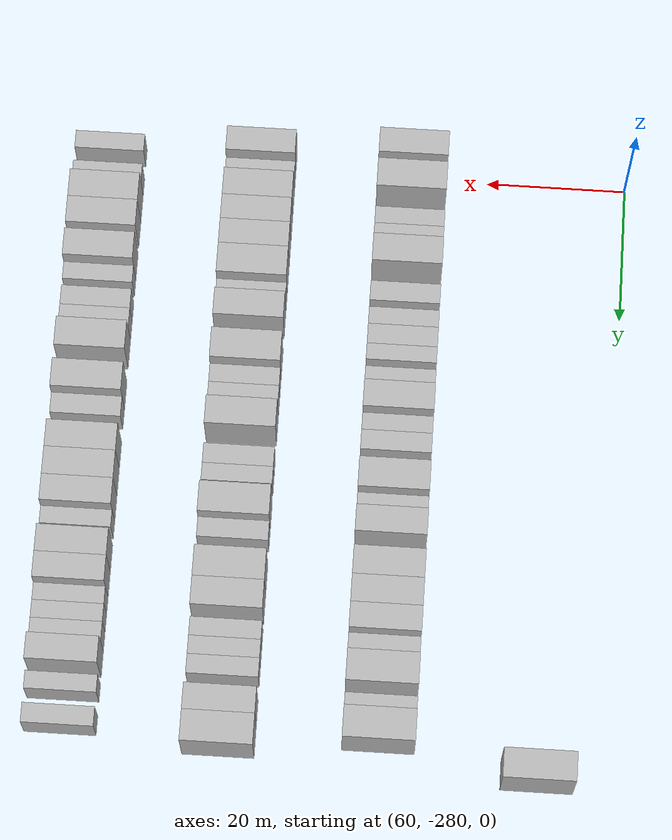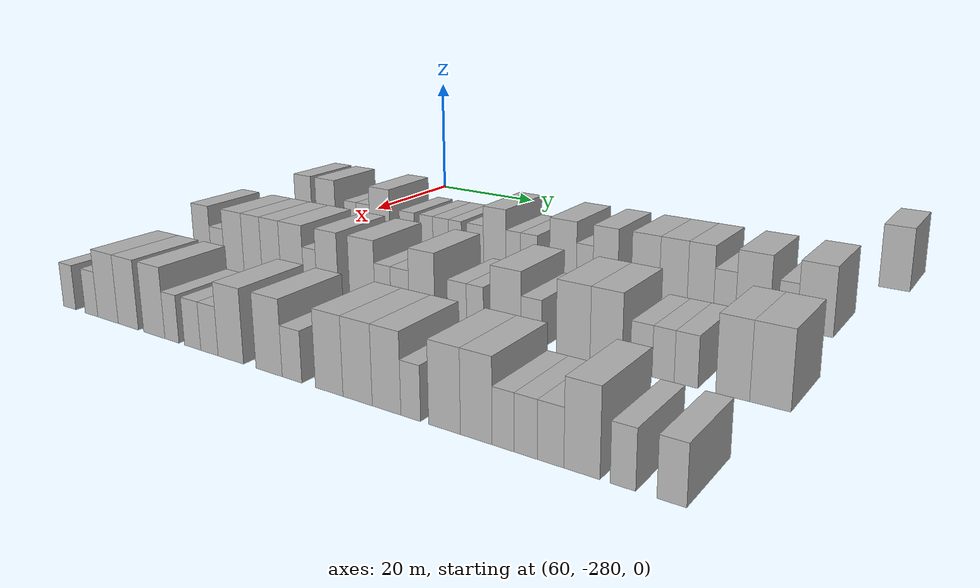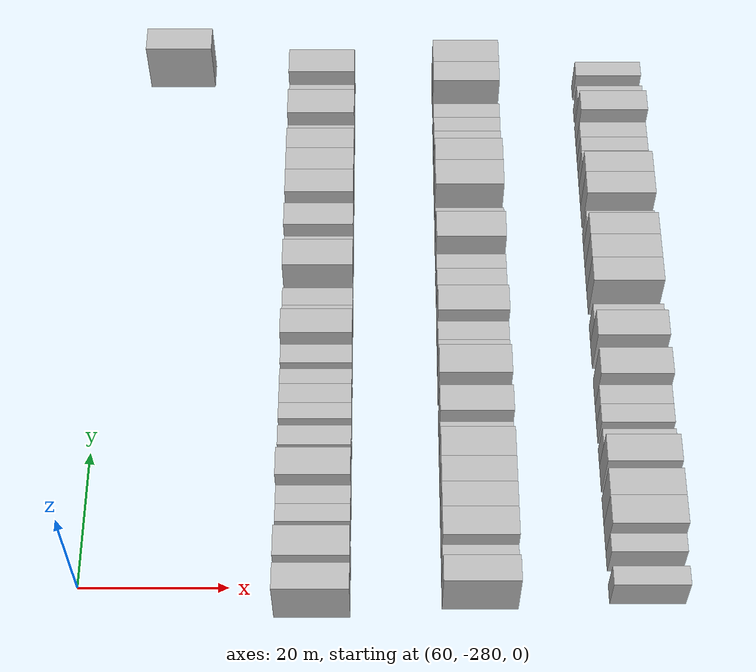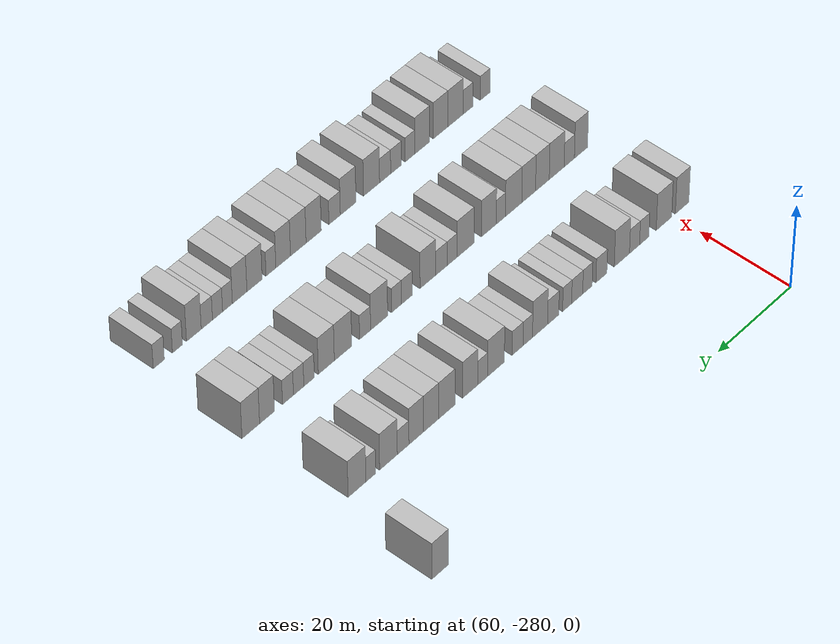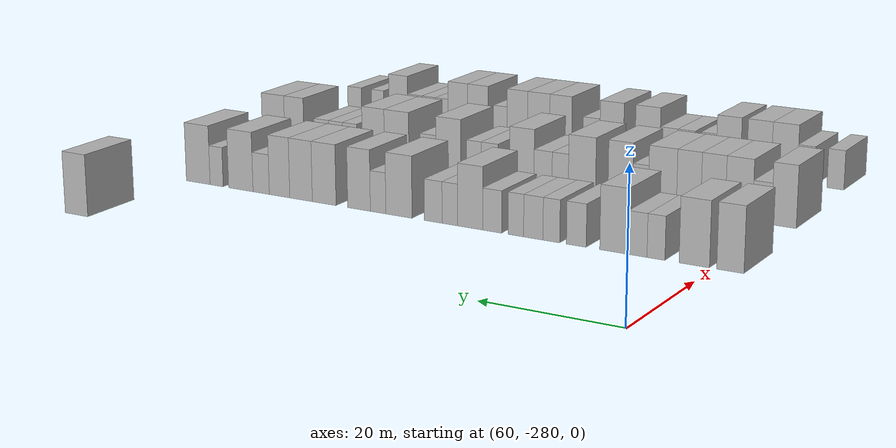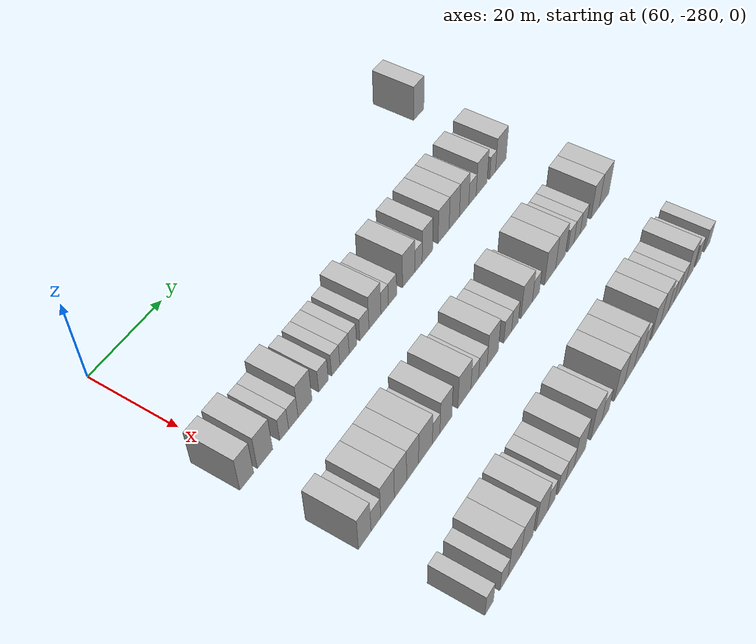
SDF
<sdf version="1.6">
 <world name="default">
  <model name="building_425">
   <static>1</static>
   <pose>69.0000 -192.4754 0 0.000000 0.000000 0.000000</pose>
   <link name="link">
    <pose>0 0 4.50 0 0 0</pose>
    <collision name="collision"><geometry><box><size>10.0000 4.1324 9.0000</size></box></geometry></collision>
    <visual name="visual">
     <cast_shadows>0</cast_shadows>
     <geometry><box><size>10.0000 4.1324 9.0000</size></box></geometry>
     <material>
      <script>
       <uri>model://HANNAS_wall/materials/scripts</uri>
       <uri>model://HANNAS_wall/materials/textures</uri>
       <name>vrc/HANNAS_wall</name>
      </script>
     </material>
    </visual>
   </link>
  </model>
  <model name="building_601">
   <static>1</static>
   <pose>91.0000 -282.3535 0 0.000000 0.000000 0.000000</pose>
   <link name="link">
    <pose>0 0 4.50 0 0 0</pose>
    <collision name="collision"><geometry><box><size>10.0000 3.7464 9.0000</size></box></geometry></collision>
    <visual name="visual">
     <cast_shadows>0</cast_shadows>
     <geometry><box><size>10.0000 3.7464 9.0000</size></box></geometry>
     <material>
      <script>
       <uri>model://HANNAS_wall/materials/scripts</uri>
       <uri>model://HANNAS_wall/materials/textures</uri>
       <name>vrc/HANNAS_wall</name>
      </script>
     </material>
    </visual>
   </link>
  </model>
  <model name="building_602">
   <static>1</static>
   <pose>91.0000 -277.3489 0 0.000000 0.000000 0.000000</pose>
   <link name="link">
    <pose>0 0 4.50 0 0 0</pose>
    <collision name="collision"><geometry><box><size>10.0000 4.2627 9.0000</size></box></geometry></collision>
    <visual name="visual">
     <cast_shadows>0</cast_shadows>
     <geometry><box><size>10.0000 4.2627 9.0000</size></box></geometry>
     <material>
      <script>
       <uri>model://HANNAS_wall/materials/scripts</uri>
       <uri>model://HANNAS_wall/materials/textures</uri>
       <name>vrc/HANNAS_wall</name>
      </script>
     </material>
    </visual>
   </link>
  </model>
  <model name="building_603">
   <static>1</static>
   <pose>91.0000 -271.9342 0 0.000000 0.000000 0.000000</pose>
   <link name="link">
    <pose>0 0 3.00 0 0 0</pose>
    <collision name="collision"><geometry><box><size>10.0000 2.5668 6.0000</size></box></geometry></collision>
    <visual name="visual">
     <cast_shadows>0</cast_shadows>
     <geometry><box><size>10.0000 2.5668 6.0000</size></box></geometry>
     <material>
      <script>
       <uri>model://HANNAS_wall/materials/scripts</uri>
       <uri>model://HANNAS_wall/materials/textures</uri>
       <name>vrc/HANNAS_wall</name>
      </script>
     </material>
    </visual>
   </link>
  </model>
  <model name="building_604">
   <static>1</static>
   <pose>91.0000 -269.2758 0 0.000000 0.000000 0.000000</pose>
   <link name="link">
    <pose>0 0 3.00 0 0 0</pose>
    <collision name="collision"><geometry><box><size>10.0000 2.7500 6.0000</size></box></geometry></collision>
    <visual name="visual">
     <cast_shadows>0</cast_shadows>
     <geometry><box><size>10.0000 2.7500 6.0000</size></box></geometry>
     <material>
      <script>
       <uri>model://HANNAS_wall/materials/scripts</uri>
       <uri>model://HANNAS_wall/materials/textures</uri>
       <name>vrc/HANNAS_wall</name>
      </script>
     </material>
    </visual>
   </link>
  </model>
  <model name="building_605">
   <static>1</static>
   <pose>91.0000 -265.8341 0 0.000000 0.000000 0.000000</pose>
   <link name="link">
    <pose>0 0 4.50 0 0 0</pose>
    <collision name="collision"><geometry><box><size>10.0000 4.1334 9.0000</size></box></geometry></collision>
    <visual name="visual">
     <cast_shadows>0</cast_shadows>
     <geometry><box><size>10.0000 4.1334 9.0000</size></box></geometry>
     <material>
      <script>
       <uri>model://HANNAS_wall/materials/scripts</uri>
       <uri>model://HANNAS_wall/materials/textures</uri>
       <name>vrc/HANNAS_wall</name>
      </script>
     </material>
    </visual>
   </link>
  </model>
  <model name="building_606">
   <static>1</static>
   <pose>91.0000 -260.2867 0 0.000000 0.000000 0.000000</pose>
   <link name="link">
    <pose>0 0 3.00 0 0 0</pose>
    <collision name="collision"><geometry><box><size>10.0000 2.9616 6.0000</size></box></geometry></collision>
    <visual name="visual">
     <cast_shadows>0</cast_shadows>
     <geometry><box><size>10.0000 2.9616 6.0000</size></box></geometry>
     <material>
      <script>
       <uri>model://HANNAS_wall/materials/scripts</uri>
       <uri>model://HANNAS_wall/materials/textures</uri>
       <name>vrc/HANNAS_wall</name>
      </script>
     </material>
    </visual>
   </link>
  </model>
  <model name="building_607">
   <static>1</static>
   <pose>91.0000 -256.5291 0 0.000000 0.000000 0.000000</pose>
   <link name="link">
    <pose>0 0 3.00 0 0 0</pose>
    <collision name="collision"><geometry><box><size>10.0000 2.5535 6.0000</size></box></geometry></collision>
    <visual name="visual">
     <cast_shadows>0</cast_shadows>
     <geometry><box><size>10.0000 2.5535 6.0000</size></box></geometry>
     <material>
      <script>
       <uri>model://HANNAS_wall/materials/scripts</uri>
       <uri>model://HANNAS_wall/materials/textures</uri>
       <name>vrc/HANNAS_wall</name>
      </script>
     </material>
    </visual>
   </link>
  </model>
  <model name="building_608">
   <static>1</static>
   <pose>91.0000 -253.7678 0 0.000000 0.000000 0.000000</pose>
   <link name="link">
    <pose>0 0 3.00 0 0 0</pose>
    <collision name="collision"><geometry><box><size>10.0000 2.9691 6.0000</size></box></geometry></collision>
    <visual name="visual">
     <cast_shadows>0</cast_shadows>
     <geometry><box><size>10.0000 2.9691 6.0000</size></box></geometry>
     <material>
      <script>
       <uri>model://HANNAS_wall/materials/scripts</uri>
       <uri>model://HANNAS_wall/materials/textures</uri>
       <name>vrc/HANNAS_wall</name>
      </script>
     </material>
    </visual>
   </link>
  </model>
  <model name="building_609">
   <static>1</static>
   <pose>91.0000 -251.0777 0 0.000000 0.000000 0.000000</pose>
   <link name="link">
    <pose>0 0 3.00 0 0 0</pose>
    <collision name="collision"><geometry><box><size>10.0000 2.4110 6.0000</size></box></geometry></collision>
    <visual name="visual">
     <cast_shadows>0</cast_shadows>
     <geometry><box><size>10.0000 2.4110 6.0000</size></box></geometry>
     <material>
      <script>
       <uri>model://HANNAS_wall/materials/scripts</uri>
       <uri>model://HANNAS_wall/materials/textures</uri>
       <name>vrc/HANNAS_wall</name>
      </script>
     </material>
    </visual>
   </link>
  </model>
  <model name="building_610">
   <static>1</static>
   <pose>91.0000 -247.3742 0 0.000000 0.000000 0.000000</pose>
   <link name="link">
    <pose>0 0 3.00 0 0 0</pose>
    <collision name="collision"><geometry><box><size>10.0000 2.9961 6.0000</size></box></geometry></collision>
    <visual name="visual">
     <cast_shadows>0</cast_shadows>
     <geometry><box><size>10.0000 2.9961 6.0000</size></box></geometry>
     <material>
      <script>
       <uri>model://HANNAS_wall/materials/scripts</uri>
       <uri>model://HANNAS_wall/materials/textures</uri>
       <name>vrc/HANNAS_wall</name>
      </script>
     </material>
    </visual>
   </link>
  </model>
  <model name="building_611">
   <static>1</static>
   <pose>91.0000 -243.8881 0 0.000000 0.000000 0.000000</pose>
   <link name="link">
    <pose>0 0 4.50 0 0 0</pose>
    <collision name="collision"><geometry><box><size>10.0000 3.9760 9.0000</size></box></geometry></collision>
    <visual name="visual">
     <cast_shadows>0</cast_shadows>
     <geometry><box><size>10.0000 3.9760 9.0000</size></box></geometry>
     <material>
      <script>
       <uri>model://HANNAS_wall/materials/scripts</uri>
       <uri>model://HANNAS_wall/materials/textures</uri>
       <name>vrc/HANNAS_wall</name>
      </script>
     </material>
    </visual>
   </link>
  </model>
  <model name="building_612">
   <static>1</static>
   <pose>91.0000 -240.6509 0 0.000000 0.000000 0.000000</pose>
   <link name="link">
    <pose>0 0 3.00 0 0 0</pose>
    <collision name="collision"><geometry><box><size>10.0000 2.4986 6.0000</size></box></geometry></collision>
    <visual name="visual">
     <cast_shadows>0</cast_shadows>
     <geometry><box><size>10.0000 2.4986 6.0000</size></box></geometry>
     <material>
      <script>
       <uri>model://HANNAS_wall/materials/scripts</uri>
       <uri>model://HANNAS_wall/materials/textures</uri>
       <name>vrc/HANNAS_wall</name>
      </script>
     </material>
    </visual>
   </link>
  </model>
  <model name="building_613">
   <static>1</static>
   <pose>91.0000 -237.9534 0 0.000000 0.000000 0.000000</pose>
   <link name="link">
    <pose>0 0 3.00 0 0 0</pose>
    <collision name="collision"><geometry><box><size>10.0000 2.8962 6.0000</size></box></geometry></collision>
    <visual name="visual">
     <cast_shadows>0</cast_shadows>
     <geometry><box><size>10.0000 2.8962 6.0000</size></box></geometry>
     <material>
      <script>
       <uri>model://HANNAS_wall/materials/scripts</uri>
       <uri>model://HANNAS_wall/materials/textures</uri>
       <name>vrc/HANNAS_wall</name>
      </script>
     </material>
    </visual>
   </link>
  </model>
  <model name="building_614">
   <static>1</static>
   <pose>91.0000 -232.3264 0 0.000000 0.000000 0.000000</pose>
   <link name="link">
    <pose>0 0 4.50 0 0 0</pose>
    <collision name="collision"><geometry><box><size>10.0000 4.3578 9.0000</size></box></geometry></collision>
    <visual name="visual">
     <cast_shadows>0</cast_shadows>
     <geometry><box><size>10.0000 4.3578 9.0000</size></box></geometry>
     <material>
      <script>
       <uri>model://HANNAS_wall/materials/scripts</uri>
       <uri>model://HANNAS_wall/materials/textures</uri>
       <name>vrc/HANNAS_wall</name>
      </script>
     </material>
    </visual>
   </link>
  </model>
  <model name="building_615">
   <static>1</static>
   <pose>91.0000 -228.8420 0 0.000000 0.000000 0.000000</pose>
   <link name="link">
    <pose>0 0 3.00 0 0 0</pose>
    <collision name="collision"><geometry><box><size>10.0000 2.6111 6.0000</size></box></geometry></collision>
    <visual name="visual">
     <cast_shadows>0</cast_shadows>
     <geometry><box><size>10.0000 2.6111 6.0000</size></box></geometry>
     <material>
      <script>
       <uri>model://HANNAS_wall/materials/scripts</uri>
       <uri>model://HANNAS_wall/materials/textures</uri>
       <name>vrc/HANNAS_wall</name>
      </script>
     </material>
    </visual>
   </link>
  </model>
  <model name="building_616">
   <static>1</static>
   <pose>91.0000 -225.6134 0 0.000000 0.000000 0.000000</pose>
   <link name="link">
    <pose>0 0 4.50 0 0 0</pose>
    <collision name="collision"><geometry><box><size>10.0000 3.8460 9.0000</size></box></geometry></collision>
    <visual name="visual">
     <cast_shadows>0</cast_shadows>
     <geometry><box><size>10.0000 3.8460 9.0000</size></box></geometry>
     <material>
      <script>
       <uri>model://HANNAS_wall/materials/scripts</uri>
       <uri>model://HANNAS_wall/materials/textures</uri>
       <name>vrc/HANNAS_wall</name>
      </script>
     </material>
    </visual>
   </link>
  </model>
  <model name="building_617">
   <static>1</static>
   <pose>91.0000 -219.6248 0 0.000000 0.000000 0.000000</pose>
   <link name="link">
    <pose>0 0 4.50 0 0 0</pose>
    <collision name="collision"><geometry><box><size>10.0000 4.1311 9.0000</size></box></geometry></collision>
    <visual name="visual">
     <cast_shadows>0</cast_shadows>
     <geometry><box><size>10.0000 4.1311 9.0000</size></box></geometry>
     <material>
      <script>
       <uri>model://HANNAS_wall/materials/scripts</uri>
       <uri>model://HANNAS_wall/materials/textures</uri>
       <name>vrc/HANNAS_wall</name>
      </script>
     </material>
    </visual>
   </link>
  </model>
  <model name="building_618">
   <static>1</static>
   <pose>91.0000 -215.5722 0 0.000000 0.000000 0.000000</pose>
   <link name="link">
    <pose>0 0 4.50 0 0 0</pose>
    <collision name="collision"><geometry><box><size>10.0000 3.9739 9.0000</size></box></geometry></collision>
    <visual name="visual">
     <cast_shadows>0</cast_shadows>
     <geometry><box><size>10.0000 3.9739 9.0000</size></box></geometry>
     <material>
      <script>
       <uri>model://HANNAS_wall/materials/scripts</uri>
       <uri>model://HANNAS_wall/materials/textures</uri>
       <name>vrc/HANNAS_wall</name>
      </script>
     </material>
    </visual>
   </link>
  </model>
  <model name="building_619">
   <static>1</static>
   <pose>91.0000 -211.7579 0 0.000000 0.000000 0.000000</pose>
   <link name="link">
    <pose>0 0 4.50 0 0 0</pose>
    <collision name="collision"><geometry><box><size>10.0000 3.6548 9.0000</size></box></geometry></collision>
    <visual name="visual">
     <cast_shadows>0</cast_shadows>
     <geometry><box><size>10.0000 3.6548 9.0000</size></box></geometry>
     <material>
      <script>
       <uri>model://HANNAS_wall/materials/scripts</uri>
       <uri>model://HANNAS_wall/materials/textures</uri>
       <name>vrc/HANNAS_wall</name>
      </script>
     </material>
    </visual>
   </link>
  </model>
  <model name="building_620">
   <static>1</static>
   <pose>91.0000 -208.4548 0 0.000000 0.000000 0.000000</pose>
   <link name="link">
    <pose>0 0 3.00 0 0 0</pose>
    <collision name="collision"><geometry><box><size>10.0000 2.9514 6.0000</size></box></geometry></collision>
    <visual name="visual">
     <cast_shadows>0</cast_shadows>
     <geometry><box><size>10.0000 2.9514 6.0000</size></box></geometry>
     <material>
      <script>
       <uri>model://HANNAS_wall/materials/scripts</uri>
       <uri>model://HANNAS_wall/materials/textures</uri>
       <name>vrc/HANNAS_wall</name>
      </script>
     </material>
    </visual>
   </link>
  </model>
  <model name="building_621">
   <static>1</static>
   <pose>91.0000 -204.7466 0 0.000000 0.000000 0.000000</pose>
   <link name="link">
    <pose>0 0 4.50 0 0 0</pose>
    <collision name="collision"><geometry><box><size>10.0000 4.4648 9.0000</size></box></geometry></collision>
    <visual name="visual">
     <cast_shadows>0</cast_shadows>
     <geometry><box><size>10.0000 4.4648 9.0000</size></box></geometry>
     <material>
      <script>
       <uri>model://HANNAS_wall/materials/scripts</uri>
       <uri>model://HANNAS_wall/materials/textures</uri>
       <name>vrc/HANNAS_wall</name>
      </script>
     </material>
    </visual>
   </link>
  </model>
  <model name="building_622">
   <static>1</static>
   <pose>91.0000 -200.2985 0 0.000000 0.000000 0.000000</pose>
   <link name="link">
    <pose>0 0 3.00 0 0 0</pose>
    <collision name="collision"><geometry><box><size>10.0000 2.4315 6.0000</size></box></geometry></collision>
    <visual name="visual">
     <cast_shadows>0</cast_shadows>
     <geometry><box><size>10.0000 2.4315 6.0000</size></box></geometry>
     <material>
      <script>
       <uri>model://HANNAS_wall/materials/scripts</uri>
       <uri>model://HANNAS_wall/materials/textures</uri>
       <name>vrc/HANNAS_wall</name>
      </script>
     </material>
    </visual>
   </link>
  </model>
  <model name="building_623">
   <static>1</static>
   <pose>91.0000 -196.8566 0 0.000000 0.000000 0.000000</pose>
   <link name="link">
    <pose>0 0 4.50 0 0 0</pose>
    <collision name="collision"><geometry><box><size>10.0000 4.4523 9.0000</size></box></geometry></collision>
    <visual name="visual">
     <cast_shadows>0</cast_shadows>
     <geometry><box><size>10.0000 4.4523 9.0000</size></box></geometry>
     <material>
      <script>
       <uri>model://HANNAS_wall/materials/scripts</uri>
       <uri>model://HANNAS_wall/materials/textures</uri>
       <name>vrc/HANNAS_wall</name>
      </script>
     </material>
    </visual>
   </link>
  </model>
  <model name="building_793">
   <static>1</static>
   <pose>113.0000 -281.2324 0 0.000000 0.000000 0.000000</pose>
   <link name="link">
    <pose>0 0 4.50 0 0 0</pose>
    <collision name="collision"><geometry><box><size>10.0000 3.6332 9.0000</size></box></geometry></collision>
    <visual name="visual">
     <cast_shadows>0</cast_shadows>
     <geometry><box><size>10.0000 3.6332 9.0000</size></box></geometry>
     <material>
      <script>
       <uri>model://HANNAS_wall/materials/scripts</uri>
       <uri>model://HANNAS_wall/materials/textures</uri>
       <name>vrc/HANNAS_wall</name>
      </script>
     </material>
    </visual>
   </link>
  </model>
  <model name="building_794">
   <static>1</static>
   <pose>113.0000 -278.0063 0 0.000000 0.000000 0.000000</pose>
   <link name="link">
    <pose>0 0 3.00 0 0 0</pose>
    <collision name="collision"><geometry><box><size>10.0000 2.8189 6.0000</size></box></geometry></collision>
    <visual name="visual">
     <cast_shadows>0</cast_shadows>
     <geometry><box><size>10.0000 2.8189 6.0000</size></box></geometry>
     <material>
      <script>
       <uri>model://HANNAS_wall/materials/scripts</uri>
       <uri>model://HANNAS_wall/materials/textures</uri>
       <name>vrc/HANNAS_wall</name>
      </script>
     </material>
    </visual>
   </link>
  </model>
  <model name="building_795">
   <static>1</static>
   <pose>113.0000 -274.5603 0 0.000000 0.000000 0.000000</pose>
   <link name="link">
    <pose>0 0 4.50 0 0 0</pose>
    <collision name="collision"><geometry><box><size>10.0000 4.0732 9.0000</size></box></geometry></collision>
    <visual name="visual">
     <cast_shadows>0</cast_shadows>
     <geometry><box><size>10.0000 4.0732 9.0000</size></box></geometry>
     <material>
      <script>
       <uri>model://HANNAS_wall/materials/scripts</uri>
       <uri>model://HANNAS_wall/materials/textures</uri>
       <name>vrc/HANNAS_wall</name>
      </script>
     </material>
    </visual>
   </link>
  </model>
  <model name="building_796">
   <static>1</static>
   <pose>113.0000 -270.6630 0 0.000000 0.000000 0.000000</pose>
   <link name="link">
    <pose>0 0 4.50 0 0 0</pose>
    <collision name="collision"><geometry><box><size>10.0000 3.7212 9.0000</size></box></geometry></collision>
    <visual name="visual">
     <cast_shadows>0</cast_shadows>
     <geometry><box><size>10.0000 3.7212 9.0000</size></box></geometry>
     <material>
      <script>
       <uri>model://HANNAS_wall/materials/scripts</uri>
       <uri>model://HANNAS_wall/materials/textures</uri>
       <name>vrc/HANNAS_wall</name>
      </script>
     </material>
    </visual>
   </link>
  </model>
  <model name="building_797">
   <static>1</static>
   <pose>113.0000 -266.9327 0 0.000000 0.000000 0.000000</pose>
   <link name="link">
    <pose>0 0 4.50 0 0 0</pose>
    <collision name="collision"><geometry><box><size>10.0000 3.7394 9.0000</size></box></geometry></collision>
    <visual name="visual">
     <cast_shadows>0</cast_shadows>
     <geometry><box><size>10.0000 3.7394 9.0000</size></box></geometry>
     <material>
      <script>
       <uri>model://HANNAS_wall/materials/scripts</uri>
       <uri>model://HANNAS_wall/materials/textures</uri>
       <name>vrc/HANNAS_wall</name>
      </script>
     </material>
    </visual>
   </link>
  </model>
  <model name="building_798">
   <static>1</static>
   <pose>113.0000 -262.8630 0 0.000000 0.000000 0.000000</pose>
   <link name="link">
    <pose>0 0 4.50 0 0 0</pose>
    <collision name="collision"><geometry><box><size>10.0000 4.4001 9.0000</size></box></geometry></collision>
    <visual name="visual">
     <cast_shadows>0</cast_shadows>
     <geometry><box><size>10.0000 4.4001 9.0000</size></box></geometry>
     <material>
      <script>
       <uri>model://HANNAS_wall/materials/scripts</uri>
       <uri>model://HANNAS_wall/materials/textures</uri>
       <name>vrc/HANNAS_wall</name>
      </script>
     </material>
    </visual>
   </link>
  </model>
  <model name="building_799">
   <static>1</static>
   <pose>113.0000 -259.4391 0 0.000000 0.000000 0.000000</pose>
   <link name="link">
    <pose>0 0 3.00 0 0 0</pose>
    <collision name="collision"><geometry><box><size>10.0000 2.4477 6.0000</size></box></geometry></collision>
    <visual name="visual">
     <cast_shadows>0</cast_shadows>
     <geometry><box><size>10.0000 2.4477 6.0000</size></box></geometry>
     <material>
      <script>
       <uri>model://HANNAS_wall/materials/scripts</uri>
       <uri>model://HANNAS_wall/materials/textures</uri>
       <name>vrc/HANNAS_wall</name>
      </script>
     </material>
    </visual>
   </link>
  </model>
  <model name="building_800">
   <static>1</static>
   <pose>113.0000 -256.2355 0 0.000000 0.000000 0.000000</pose>
   <link name="link">
    <pose>0 0 4.50 0 0 0</pose>
    <collision name="collision"><geometry><box><size>10.0000 3.9595 9.0000</size></box></geometry></collision>
    <visual name="visual">
     <cast_shadows>0</cast_shadows>
     <geometry><box><size>10.0000 3.9595 9.0000</size></box></geometry>
     <material>
      <script>
       <uri>model://HANNAS_wall/materials/scripts</uri>
       <uri>model://HANNAS_wall/materials/textures</uri>
       <name>vrc/HANNAS_wall</name>
      </script>
     </material>
    </visual>
   </link>
  </model>
  <model name="building_801">
   <static>1</static>
   <pose>113.0000 -250.0374 0 0.000000 0.000000 0.000000</pose>
   <link name="link">
    <pose>0 0 4.50 0 0 0</pose>
    <collision name="collision"><geometry><box><size>10.0000 4.4367 9.0000</size></box></geometry></collision>
    <visual name="visual">
     <cast_shadows>0</cast_shadows>
     <geometry><box><size>10.0000 4.4367 9.0000</size></box></geometry>
     <material>
      <script>
       <uri>model://HANNAS_wall/materials/scripts</uri>
       <uri>model://HANNAS_wall/materials/textures</uri>
       <name>vrc/HANNAS_wall</name>
      </script>
     </material>
    </visual>
   </link>
  </model>
  <model name="building_802">
   <static>1</static>
   <pose>113.0000 -246.4676 0 0.000000 0.000000 0.000000</pose>
   <link name="link">
    <pose>0 0 3.00 0 0 0</pose>
    <collision name="collision"><geometry><box><size>10.0000 2.7029 6.0000</size></box></geometry></collision>
    <visual name="visual">
     <cast_shadows>0</cast_shadows>
     <geometry><box><size>10.0000 2.7029 6.0000</size></box></geometry>
     <material>
      <script>
       <uri>model://HANNAS_wall/materials/scripts</uri>
       <uri>model://HANNAS_wall/materials/textures</uri>
       <name>vrc/HANNAS_wall</name>
      </script>
     </material>
    </visual>
   </link>
  </model>
  <model name="building_803">
   <static>1</static>
   <pose>113.0000 -243.6189 0 0.000000 0.000000 0.000000</pose>
   <link name="link">
    <pose>0 0 3.00 0 0 0</pose>
    <collision name="collision"><geometry><box><size>10.0000 2.9946 6.0000</size></box></geometry></collision>
    <visual name="visual">
     <cast_shadows>0</cast_shadows>
     <geometry><box><size>10.0000 2.9946 6.0000</size></box></geometry>
     <material>
      <script>
       <uri>model://HANNAS_wall/materials/scripts</uri>
       <uri>model://HANNAS_wall/materials/textures</uri>
       <name>vrc/HANNAS_wall</name>
      </script>
     </material>
    </visual>
   </link>
  </model>
  <model name="building_804">
   <static>1</static>
   <pose>113.0000 -240.0661 0 0.000000 0.000000 0.000000</pose>
   <link name="link">
    <pose>0 0 4.50 0 0 0</pose>
    <collision name="collision"><geometry><box><size>10.0000 4.1108 9.0000</size></box></geometry></collision>
    <visual name="visual">
     <cast_shadows>0</cast_shadows>
     <geometry><box><size>10.0000 4.1108 9.0000</size></box></geometry>
     <material>
      <script>
       <uri>model://HANNAS_wall/materials/scripts</uri>
       <uri>model://HANNAS_wall/materials/textures</uri>
       <name>vrc/HANNAS_wall</name>
      </script>
     </material>
    </visual>
   </link>
  </model>
  <model name="building_805">
   <static>1</static>
   <pose>113.0000 -234.5644 0 0.000000 0.000000 0.000000</pose>
   <link name="link">
    <pose>0 0 3.00 0 0 0</pose>
    <collision name="collision"><geometry><box><size>10.0000 2.8927 6.0000</size></box></geometry></collision>
    <visual name="visual">
     <cast_shadows>0</cast_shadows>
     <geometry><box><size>10.0000 2.8927 6.0000</size></box></geometry>
     <material>
      <script>
       <uri>model://HANNAS_wall/materials/scripts</uri>
       <uri>model://HANNAS_wall/materials/textures</uri>
       <name>vrc/HANNAS_wall</name>
      </script>
     </material>
    </visual>
   </link>
  </model>
  <model name="building_806">
   <static>1</static>
   <pose>113.0000 -231.8495 0 0.000000 0.000000 0.000000</pose>
   <link name="link">
    <pose>0 0 3.00 0 0 0</pose>
    <collision name="collision"><geometry><box><size>10.0000 2.5369 6.0000</size></box></geometry></collision>
    <visual name="visual">
     <cast_shadows>0</cast_shadows>
     <geometry><box><size>10.0000 2.5369 6.0000</size></box></geometry>
     <material>
      <script>
       <uri>model://HANNAS_wall/materials/scripts</uri>
       <uri>model://HANNAS_wall/materials/textures</uri>
       <name>vrc/HANNAS_wall</name>
      </script>
     </material>
    </visual>
   </link>
  </model>
  <model name="building_807">
   <static>1</static>
   <pose>113.0000 -227.3758 0 0.000000 0.000000 0.000000</pose>
   <link name="link">
    <pose>0 0 4.50 0 0 0</pose>
    <collision name="collision"><geometry><box><size>10.0000 4.4105 9.0000</size></box></geometry></collision>
    <visual name="visual">
     <cast_shadows>0</cast_shadows>
     <geometry><box><size>10.0000 4.4105 9.0000</size></box></geometry>
     <material>
      <script>
       <uri>model://HANNAS_wall/materials/scripts</uri>
       <uri>model://HANNAS_wall/materials/textures</uri>
       <name>vrc/HANNAS_wall</name>
      </script>
     </material>
    </visual>
   </link>
  </model>
  <model name="building_808">
   <static>1</static>
   <pose>113.0000 -223.7570 0 0.000000 0.000000 0.000000</pose>
   <link name="link">
    <pose>0 0 3.00 0 0 0</pose>
    <collision name="collision"><geometry><box><size>10.0000 2.8272 6.0000</size></box></geometry></collision>
    <visual name="visual">
     <cast_shadows>0</cast_shadows>
     <geometry><box><size>10.0000 2.8272 6.0000</size></box></geometry>
     <material>
      <script>
       <uri>model://HANNAS_wall/materials/scripts</uri>
       <uri>model://HANNAS_wall/materials/textures</uri>
       <name>vrc/HANNAS_wall</name>
      </script>
     </material>
    </visual>
   </link>
  </model>
  <model name="building_809">
   <static>1</static>
   <pose>113.0000 -218.1139 0 0.000000 0.000000 0.000000</pose>
   <link name="link">
    <pose>0 0 4.50 0 0 0</pose>
    <collision name="collision"><geometry><box><size>10.0000 4.4590 9.0000</size></box></geometry></collision>
    <visual name="visual">
     <cast_shadows>0</cast_shadows>
     <geometry><box><size>10.0000 4.4590 9.0000</size></box></geometry>
     <material>
      <script>
       <uri>model://HANNAS_wall/materials/scripts</uri>
       <uri>model://HANNAS_wall/materials/textures</uri>
       <name>vrc/HANNAS_wall</name>
      </script>
     </material>
    </visual>
   </link>
  </model>
  <model name="building_810">
   <static>1</static>
   <pose>113.0000 -213.8503 0 0.000000 0.000000 0.000000</pose>
   <link name="link">
    <pose>0 0 4.50 0 0 0</pose>
    <collision name="collision"><geometry><box><size>10.0000 4.0682 9.0000</size></box></geometry></collision>
    <visual name="visual">
     <cast_shadows>0</cast_shadows>
     <geometry><box><size>10.0000 4.0682 9.0000</size></box></geometry>
     <material>
      <script>
       <uri>model://HANNAS_wall/materials/scripts</uri>
       <uri>model://HANNAS_wall/materials/textures</uri>
       <name>vrc/HANNAS_wall</name>
      </script>
     </material>
    </visual>
   </link>
  </model>
  <model name="building_811">
   <static>1</static>
   <pose>113.0000 -209.4883 0 0.000000 0.000000 0.000000</pose>
   <link name="link">
    <pose>0 0 3.00 0 0 0</pose>
    <collision name="collision"><geometry><box><size>10.0000 2.6559 6.0000</size></box></geometry></collision>
    <visual name="visual">
     <cast_shadows>0</cast_shadows>
     <geometry><box><size>10.0000 2.6559 6.0000</size></box></geometry>
     <material>
      <script>
       <uri>model://HANNAS_wall/materials/scripts</uri>
       <uri>model://HANNAS_wall/materials/textures</uri>
       <name>vrc/HANNAS_wall</name>
      </script>
     </material>
    </visual>
   </link>
  </model>
  <model name="building_812">
   <static>1</static>
   <pose>113.0000 -206.8536 0 0.000000 0.000000 0.000000</pose>
   <link name="link">
    <pose>0 0 3.00 0 0 0</pose>
    <collision name="collision"><geometry><box><size>10.0000 2.6135 6.0000</size></box></geometry></collision>
    <visual name="visual">
     <cast_shadows>0</cast_shadows>
     <geometry><box><size>10.0000 2.6135 6.0000</size></box></geometry>
     <material>
      <script>
       <uri>model://HANNAS_wall/materials/scripts</uri>
       <uri>model://HANNAS_wall/materials/textures</uri>
       <name>vrc/HANNAS_wall</name>
      </script>
     </material>
    </visual>
   </link>
  </model>
  <model name="building_813">
   <static>1</static>
   <pose>113.0000 -204.1734 0 0.000000 0.000000 0.000000</pose>
   <link name="link">
    <pose>0 0 3.00 0 0 0</pose>
    <collision name="collision"><geometry><box><size>10.0000 2.7469 6.0000</size></box></geometry></collision>
    <visual name="visual">
     <cast_shadows>0</cast_shadows>
     <geometry><box><size>10.0000 2.7469 6.0000</size></box></geometry>
     <material>
      <script>
       <uri>model://HANNAS_wall/materials/scripts</uri>
       <uri>model://HANNAS_wall/materials/textures</uri>
       <name>vrc/HANNAS_wall</name>
      </script>
     </material>
    </visual>
   </link>
  </model>
  <model name="building_814">
   <static>1</static>
   <pose>113.0000 -198.9384 0 0.000000 0.000000 0.000000</pose>
   <link name="link">
    <pose>0 0 4.50 0 0 0</pose>
    <collision name="collision"><geometry><box><size>10.0000 3.7233 9.0000</size></box></geometry></collision>
    <visual name="visual">
     <cast_shadows>0</cast_shadows>
     <geometry><box><size>10.0000 3.7233 9.0000</size></box></geometry>
     <material>
      <script>
       <uri>model://HANNAS_wall/materials/scripts</uri>
       <uri>model://HANNAS_wall/materials/textures</uri>
       <name>vrc/HANNAS_wall</name>
      </script>
     </material>
    </visual>
   </link>
  </model>
  <model name="building_815">
   <static>1</static>
   <pose>113.0000 -194.8934 0 0.000000 0.000000 0.000000</pose>
   <link name="link">
    <pose>0 0 4.50 0 0 0</pose>
    <collision name="collision"><geometry><box><size>10.0000 4.3667 9.0000</size></box></geometry></collision>
    <visual name="visual">
     <cast_shadows>0</cast_shadows>
     <geometry><box><size>10.0000 4.3667 9.0000</size></box></geometry>
     <material>
      <script>
       <uri>model://HANNAS_wall/materials/scripts</uri>
       <uri>model://HANNAS_wall/materials/textures</uri>
       <name>vrc/HANNAS_wall</name>
      </script>
     </material>
    </visual>
   </link>
  </model>
  <model name="building_972">
   <static>1</static>
   <pose>135.0000 -280.9439 0 0.000000 0.000000 0.000000</pose>
   <link name="link">
    <pose>0 0 3.00 0 0 0</pose>
    <collision name="collision"><geometry><box><size>10.0000 2.6350 6.0000</size></box></geometry></collision>
    <visual name="visual">
     <cast_shadows>0</cast_shadows>
     <geometry><box><size>10.0000 2.6350 6.0000</size></box></geometry>
     <material>
      <script>
       <uri>model://HANNAS_wall/materials/scripts</uri>
       <uri>model://HANNAS_wall/materials/textures</uri>
       <name>vrc/HANNAS_wall</name>
      </script>
     </material>
    </visual>
   </link>
  </model>
  <model name="building_973">
   <static>1</static>
   <pose>135.0000 -276.3003 0 0.000000 0.000000 0.000000</pose>
   <link name="link">
    <pose>0 0 3.00 0 0 0</pose>
    <collision name="collision"><geometry><box><size>10.0000 2.6521 6.0000</size></box></geometry></collision>
    <visual name="visual">
     <cast_shadows>0</cast_shadows>
     <geometry><box><size>10.0000 2.6521 6.0000</size></box></geometry>
     <material>
      <script>
       <uri>model://HANNAS_wall/materials/scripts</uri>
       <uri>model://HANNAS_wall/materials/textures</uri>
       <name>vrc/HANNAS_wall</name>
      </script>
     </material>
    </visual>
   </link>
  </model>
  <model name="building_974">
   <static>1</static>
   <pose>135.0000 -272.9057 0 0.000000 0.000000 0.000000</pose>
   <link name="link">
    <pose>0 0 4.50 0 0 0</pose>
    <collision name="collision"><geometry><box><size>10.0000 4.1370 9.0000</size></box></geometry></collision>
    <visual name="visual">
     <cast_shadows>0</cast_shadows>
     <geometry><box><size>10.0000 4.1370 9.0000</size></box></geometry>
     <material>
      <script>
       <uri>model://HANNAS_wall/materials/scripts</uri>
       <uri>model://HANNAS_wall/materials/textures</uri>
       <name>vrc/HANNAS_wall</name>
      </script>
     </material>
    </visual>
   </link>
  </model>
  <model name="building_975">
   <static>1</static>
   <pose>135.0000 -268.8573 0 0.000000 0.000000 0.000000</pose>
   <link name="link">
    <pose>0 0 4.50 0 0 0</pose>
    <collision name="collision"><geometry><box><size>10.0000 3.9598 9.0000</size></box></geometry></collision>
    <visual name="visual">
     <cast_shadows>0</cast_shadows>
     <geometry><box><size>10.0000 3.9598 9.0000</size></box></geometry>
     <material>
      <script>
       <uri>model://HANNAS_wall/materials/scripts</uri>
       <uri>model://HANNAS_wall/materials/textures</uri>
       <name>vrc/HANNAS_wall</name>
      </script>
     </material>
    </visual>
   </link>
  </model>
  <model name="building_976">
   <static>1</static>
   <pose>135.0000 -263.8728 0 0.000000 0.000000 0.000000</pose>
   <link name="link">
    <pose>0 0 4.50 0 0 0</pose>
    <collision name="collision"><geometry><box><size>10.0000 4.0091 9.0000</size></box></geometry></collision>
    <visual name="visual">
     <cast_shadows>0</cast_shadows>
     <geometry><box><size>10.0000 4.0091 9.0000</size></box></geometry>
     <material>
      <script>
       <uri>model://HANNAS_wall/materials/scripts</uri>
       <uri>model://HANNAS_wall/materials/textures</uri>
       <name>vrc/HANNAS_wall</name>
      </script>
     </material>
    </visual>
   </link>
  </model>
  <model name="building_977">
   <static>1</static>
   <pose>135.0000 -260.5913 0 0.000000 0.000000 0.000000</pose>
   <link name="link">
    <pose>0 0 3.00 0 0 0</pose>
    <collision name="collision"><geometry><box><size>10.0000 2.5539 6.0000</size></box></geometry></collision>
    <visual name="visual">
     <cast_shadows>0</cast_shadows>
     <geometry><box><size>10.0000 2.5539 6.0000</size></box></geometry>
     <material>
      <script>
       <uri>model://HANNAS_wall/materials/scripts</uri>
       <uri>model://HANNAS_wall/materials/textures</uri>
       <name>vrc/HANNAS_wall</name>
      </script>
     </material>
    </visual>
   </link>
  </model>
  <model name="building_978">
   <static>1</static>
   <pose>135.0000 -256.8739 0 0.000000 0.000000 0.000000</pose>
   <link name="link">
    <pose>0 0 3.00 0 0 0</pose>
    <collision name="collision"><geometry><box><size>10.0000 2.8809 6.0000</size></box></geometry></collision>
    <visual name="visual">
     <cast_shadows>0</cast_shadows>
     <geometry><box><size>10.0000 2.8809 6.0000</size></box></geometry>
     <material>
      <script>
       <uri>model://HANNAS_wall/materials/scripts</uri>
       <uri>model://HANNAS_wall/materials/textures</uri>
       <name>vrc/HANNAS_wall</name>
      </script>
     </material>
    </visual>
   </link>
  </model>
  <model name="building_979">
   <static>1</static>
   <pose>135.0000 -253.9514 0 0.000000 0.000000 0.000000</pose>
   <link name="link">
    <pose>0 0 3.00 0 0 0</pose>
    <collision name="collision"><geometry><box><size>10.0000 2.9641 6.0000</size></box></geometry></collision>
    <visual name="visual">
     <cast_shadows>0</cast_shadows>
     <geometry><box><size>10.0000 2.9641 6.0000</size></box></geometry>
     <material>
      <script>
       <uri>model://HANNAS_wall/materials/scripts</uri>
       <uri>model://HANNAS_wall/materials/textures</uri>
       <name>vrc/HANNAS_wall</name>
      </script>
     </material>
    </visual>
   </link>
  </model>
  <model name="building_980">
   <static>1</static>
   <pose>135.0000 -250.3542 0 0.000000 0.000000 0.000000</pose>
   <link name="link">
    <pose>0 0 4.50 0 0 0</pose>
    <collision name="collision"><geometry><box><size>10.0000 4.2303 9.0000</size></box></geometry></collision>
    <visual name="visual">
     <cast_shadows>0</cast_shadows>
     <geometry><box><size>10.0000 4.2303 9.0000</size></box></geometry>
     <material>
      <script>
       <uri>model://HANNAS_wall/materials/scripts</uri>
       <uri>model://HANNAS_wall/materials/textures</uri>
       <name>vrc/HANNAS_wall</name>
      </script>
     </material>
    </visual>
   </link>
  </model>
  <model name="building_981">
   <static>1</static>
   <pose>135.0000 -244.1812 0 0.000000 0.000000 0.000000</pose>
   <link name="link">
    <pose>0 0 4.50 0 0 0</pose>
    <collision name="collision"><geometry><box><size>10.0000 4.1157 9.0000</size></box></geometry></collision>
    <visual name="visual">
     <cast_shadows>0</cast_shadows>
     <geometry><box><size>10.0000 4.1157 9.0000</size></box></geometry>
     <material>
      <script>
       <uri>model://HANNAS_wall/materials/scripts</uri>
       <uri>model://HANNAS_wall/materials/textures</uri>
       <name>vrc/HANNAS_wall</name>
      </script>
     </material>
    </visual>
   </link>
  </model>
  <model name="building_982">
   <static>1</static>
   <pose>135.0000 -240.6384 0 0.000000 0.000000 0.000000</pose>
   <link name="link">
    <pose>0 0 3.00 0 0 0</pose>
    <collision name="collision"><geometry><box><size>10.0000 2.9700 6.0000</size></box></geometry></collision>
    <visual name="visual">
     <cast_shadows>0</cast_shadows>
     <geometry><box><size>10.0000 2.9700 6.0000</size></box></geometry>
     <material>
      <script>
       <uri>model://HANNAS_wall/materials/scripts</uri>
       <uri>model://HANNAS_wall/materials/textures</uri>
       <name>vrc/HANNAS_wall</name>
      </script>
     </material>
    </visual>
   </link>
  </model>
  <model name="building_983">
   <static>1</static>
   <pose>135.0000 -235.1796 0 0.000000 0.000000 0.000000</pose>
   <link name="link">
    <pose>0 0 4.50 0 0 0</pose>
    <collision name="collision"><geometry><box><size>10.0000 3.9475 9.0000</size></box></geometry></collision>
    <visual name="visual">
     <cast_shadows>0</cast_shadows>
     <geometry><box><size>10.0000 3.9475 9.0000</size></box></geometry>
     <material>
      <script>
       <uri>model://HANNAS_wall/materials/scripts</uri>
       <uri>model://HANNAS_wall/materials/textures</uri>
       <name>vrc/HANNAS_wall</name>
      </script>
     </material>
    </visual>
   </link>
  </model>
  <model name="building_984">
   <static>1</static>
   <pose>135.0000 -231.1923 0 0.000000 0.000000 0.000000</pose>
   <link name="link">
    <pose>0 0 4.50 0 0 0</pose>
    <collision name="collision"><geometry><box><size>10.0000 4.0271 9.0000</size></box></geometry></collision>
    <visual name="visual">
     <cast_shadows>0</cast_shadows>
     <geometry><box><size>10.0000 4.0271 9.0000</size></box></geometry>
     <material>
      <script>
       <uri>model://HANNAS_wall/materials/scripts</uri>
       <uri>model://HANNAS_wall/materials/textures</uri>
       <name>vrc/HANNAS_wall</name>
      </script>
     </material>
    </visual>
   </link>
  </model>
  <model name="building_985">
   <static>1</static>
   <pose>135.0000 -227.2946 0 0.000000 0.000000 0.000000</pose>
   <link name="link">
    <pose>0 0 4.50 0 0 0</pose>
    <collision name="collision"><geometry><box><size>10.0000 3.7682 9.0000</size></box></geometry></collision>
    <visual name="visual">
     <cast_shadows>0</cast_shadows>
     <geometry><box><size>10.0000 3.7682 9.0000</size></box></geometry>
     <material>
      <script>
       <uri>model://HANNAS_wall/materials/scripts</uri>
       <uri>model://HANNAS_wall/materials/textures</uri>
       <name>vrc/HANNAS_wall</name>
      </script>
     </material>
    </visual>
   </link>
  </model>
  <model name="building_986">
   <static>1</static>
   <pose>135.0000 -224.1532 0 0.000000 0.000000 0.000000</pose>
   <link name="link">
    <pose>0 0 3.00 0 0 0</pose>
    <collision name="collision"><geometry><box><size>10.0000 2.5147 6.0000</size></box></geometry></collision>
    <visual name="visual">
     <cast_shadows>0</cast_shadows>
     <geometry><box><size>10.0000 2.5147 6.0000</size></box></geometry>
     <material>
      <script>
       <uri>model://HANNAS_wall/materials/scripts</uri>
       <uri>model://HANNAS_wall/materials/textures</uri>
       <name>vrc/HANNAS_wall</name>
      </script>
     </material>
    </visual>
   </link>
  </model>
  <model name="building_987">
   <static>1</static>
   <pose>135.0000 -219.9577 0 0.000000 0.000000 0.000000</pose>
   <link name="link">
    <pose>0 0 4.50 0 0 0</pose>
    <collision name="collision"><geometry><box><size>10.0000 3.8763 9.0000</size></box></geometry></collision>
    <visual name="visual">
     <cast_shadows>0</cast_shadows>
     <geometry><box><size>10.0000 3.8763 9.0000</size></box></geometry>
     <material>
      <script>
       <uri>model://HANNAS_wall/materials/scripts</uri>
       <uri>model://HANNAS_wall/materials/textures</uri>
       <name>vrc/HANNAS_wall</name>
      </script>
     </material>
    </visual>
   </link>
  </model>
  <model name="building_988">
   <static>1</static>
   <pose>135.0000 -216.1716 0 0.000000 0.000000 0.000000</pose>
   <link name="link">
    <pose>0 0 4.50 0 0 0</pose>
    <collision name="collision"><geometry><box><size>10.0000 3.6958 9.0000</size></box></geometry></collision>
    <visual name="visual">
     <cast_shadows>0</cast_shadows>
     <geometry><box><size>10.0000 3.6958 9.0000</size></box></geometry>
     <material>
      <script>
       <uri>model://HANNAS_wall/materials/scripts</uri>
       <uri>model://HANNAS_wall/materials/textures</uri>
       <name>vrc/HANNAS_wall</name>
      </script>
     </material>
    </visual>
   </link>
  </model>
  <model name="building_989">
   <static>1</static>
   <pose>135.0000 -213.0849 0 0.000000 0.000000 0.000000</pose>
   <link name="link">
    <pose>0 0 3.00 0 0 0</pose>
    <collision name="collision"><geometry><box><size>10.0000 2.4777 6.0000</size></box></geometry></collision>
    <visual name="visual">
     <cast_shadows>0</cast_shadows>
     <geometry><box><size>10.0000 2.4777 6.0000</size></box></geometry>
     <material>
      <script>
       <uri>model://HANNAS_wall/materials/scripts</uri>
       <uri>model://HANNAS_wall/materials/textures</uri>
       <name>vrc/HANNAS_wall</name>
      </script>
     </material>
    </visual>
   </link>
  </model>
  <model name="building_990">
   <static>1</static>
   <pose>135.0000 -210.5760 0 0.000000 0.000000 0.000000</pose>
   <link name="link">
    <pose>0 0 3.00 0 0 0</pose>
    <collision name="collision"><geometry><box><size>10.0000 2.5401 6.0000</size></box></geometry></collision>
    <visual name="visual">
     <cast_shadows>0</cast_shadows>
     <geometry><box><size>10.0000 2.5401 6.0000</size></box></geometry>
     <material>
      <script>
       <uri>model://HANNAS_wall/materials/scripts</uri>
       <uri>model://HANNAS_wall/materials/textures</uri>
       <name>vrc/HANNAS_wall</name>
      </script>
     </material>
    </visual>
   </link>
  </model>
  <model name="building_991">
   <static>1</static>
   <pose>135.0000 -207.8894 0 0.000000 0.000000 0.000000</pose>
   <link name="link">
    <pose>0 0 3.00 0 0 0</pose>
    <collision name="collision"><geometry><box><size>10.0000 2.8331 6.0000</size></box></geometry></collision>
    <visual name="visual">
     <cast_shadows>0</cast_shadows>
     <geometry><box><size>10.0000 2.8331 6.0000</size></box></geometry>
     <material>
      <script>
       <uri>model://HANNAS_wall/materials/scripts</uri>
       <uri>model://HANNAS_wall/materials/textures</uri>
       <name>vrc/HANNAS_wall</name>
      </script>
     </material>
    </visual>
   </link>
  </model>
  <model name="building_992">
   <static>1</static>
   <pose>135.0000 -204.6261 0 0.000000 0.000000 0.000000</pose>
   <link name="link">
    <pose>0 0 4.50 0 0 0</pose>
    <collision name="collision"><geometry><box><size>10.0000 3.6933 9.0000</size></box></geometry></collision>
    <visual name="visual">
     <cast_shadows>0</cast_shadows>
     <geometry><box><size>10.0000 3.6933 9.0000</size></box></geometry>
     <material>
      <script>
       <uri>model://HANNAS_wall/materials/scripts</uri>
       <uri>model://HANNAS_wall/materials/textures</uri>
       <name>vrc/HANNAS_wall</name>
      </script>
     </material>
    </visual>
   </link>
  </model>
  <model name="building_993">
   <static>1</static>
   <pose>135.0000 -200.5325 0 0.000000 0.000000 0.000000</pose>
   <link name="link">
    <pose>0 0 3.00 0 0 0</pose>
    <collision name="collision"><geometry><box><size>10.0000 2.4940 6.0000</size></box></geometry></collision>
    <visual name="visual">
     <cast_shadows>0</cast_shadows>
     <geometry><box><size>10.0000 2.4940 6.0000</size></box></geometry>
     <material>
      <script>
       <uri>model://HANNAS_wall/materials/scripts</uri>
       <uri>model://HANNAS_wall/materials/textures</uri>
       <name>vrc/HANNAS_wall</name>
      </script>
     </material>
    </visual>
   </link>
  </model>
  <model name="building_994">
   <static>1</static>
   <pose>135.0000 -195.9080 0 0.000000 0.000000 0.000000</pose>
   <link name="link">
    <pose>0 0 3.00 0 0 0</pose>
    <collision name="collision"><geometry><box><size>10.0000 2.7550 6.0000</size></box></geometry></collision>
    <visual name="visual">
     <cast_shadows>0</cast_shadows>
     <geometry><box><size>10.0000 2.7550 6.0000</size></box></geometry>
     <material>
      <script>
       <uri>model://HANNAS_wall/materials/scripts</uri>
       <uri>model://HANNAS_wall/materials/textures</uri>
       <name>vrc/HANNAS_wall</name>
      </script>
     </material>
    </visual>
   </link>
  </model>
 </world>
</sdf>
